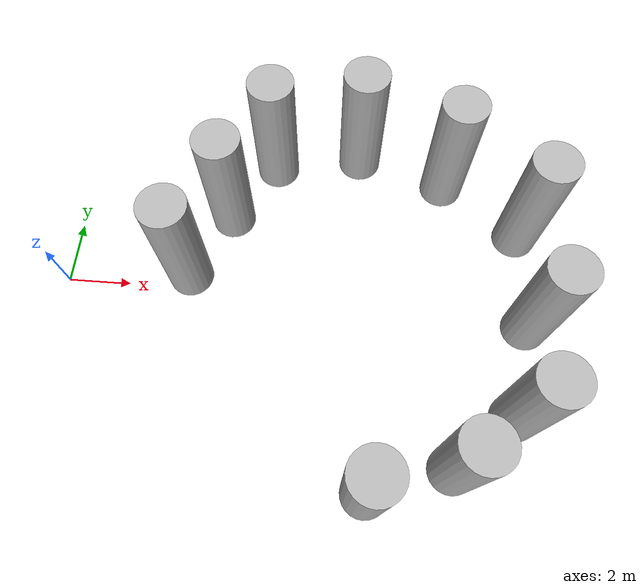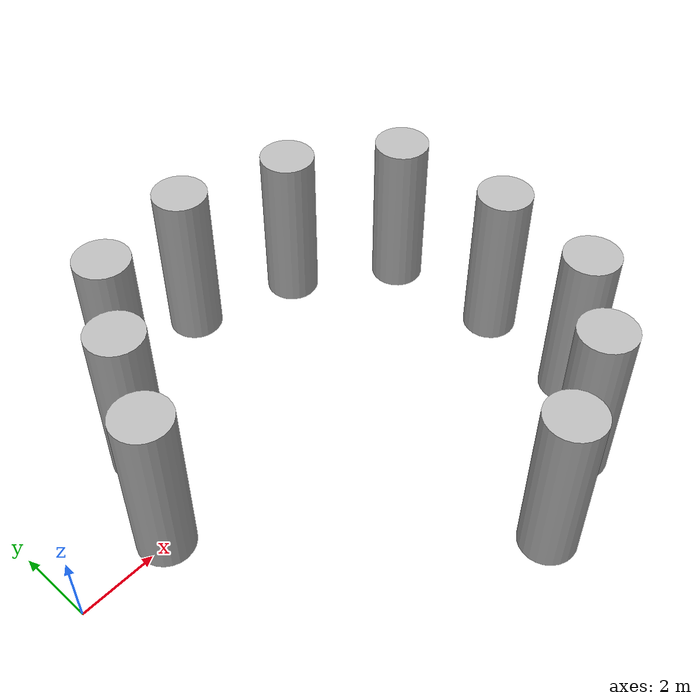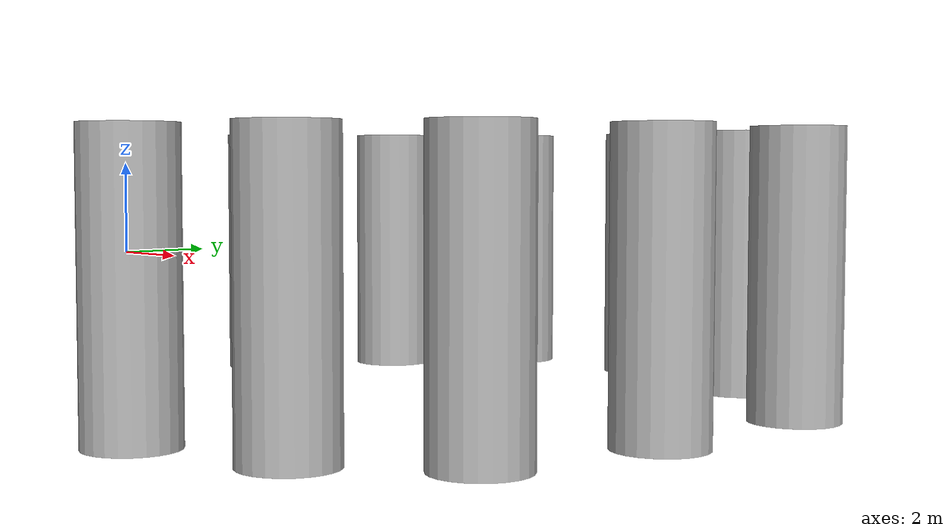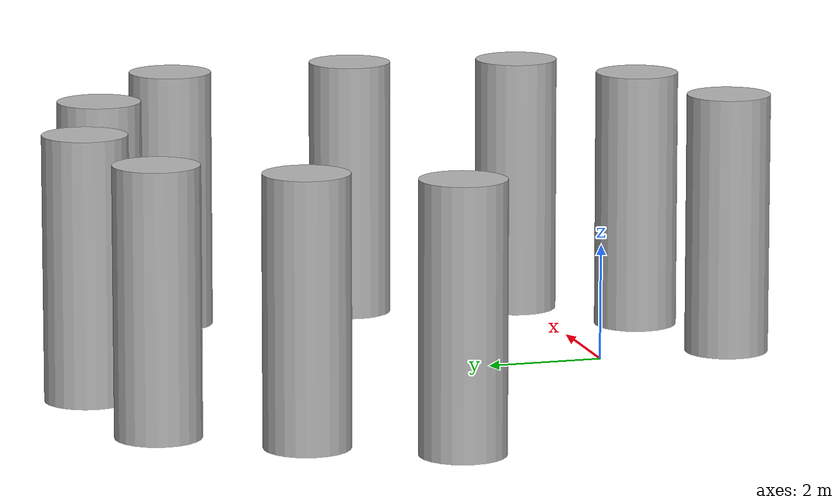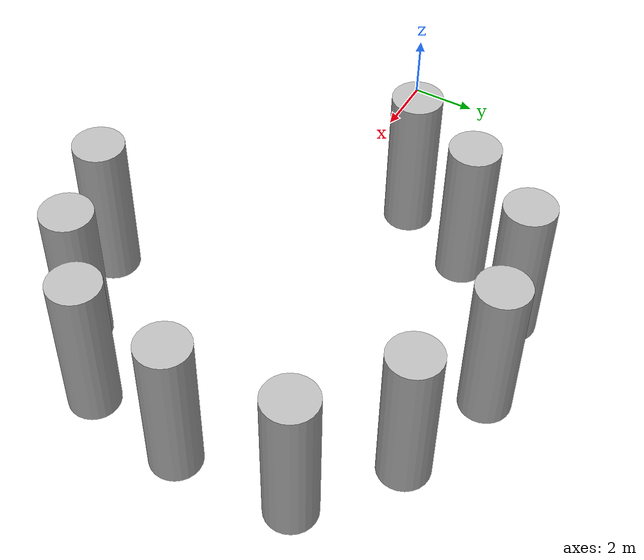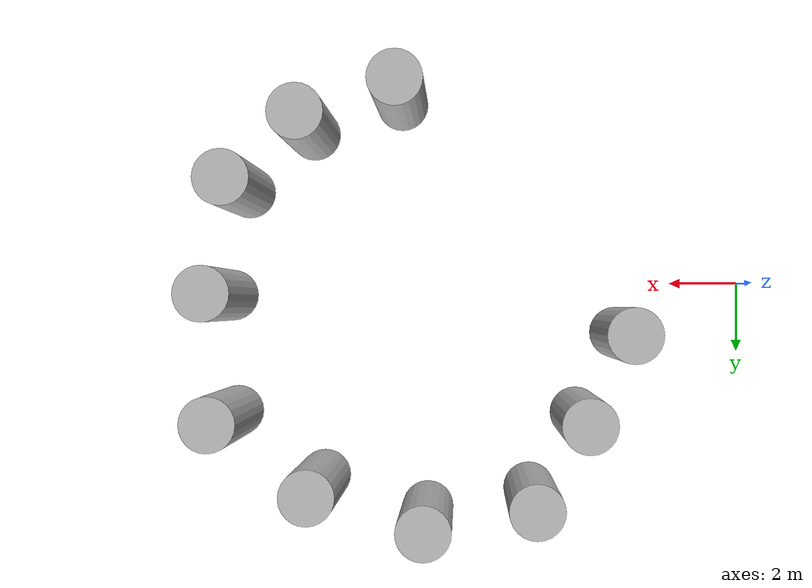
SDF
<?xml version='1.0'?>
<sdf version='1.6'>
  <model name='utrap'>
    <model name='beer_large'>
      <link name='link'>
        <pose frame=''>0 0 0.115 0 -0 0</pose>
        <inertial>
          <mass>1</mass>
          <inertia>
            <ixx>0</ixx>
            <ixy>0</ixy>
            <ixz>0</ixz>
            <iyy>0</iyy>
            <iyz>0</iyz>
            <izz>0</izz>
          </inertia>
        </inertial>
        <collision name='collision'>
          <geometry>
            <cylinder>
              <radius>0.8</radius>
              <length>5</length>
            </cylinder>
          </geometry>
        </collision>
        <visual name='visual'>
          <geometry>
            <cylinder>
              <radius>0.8</radius>
              <length>5</length>
            </cylinder>
          </geometry>
          <material>
            <script>
              <uri>model://beer_large/materials/scripts</uri>
              <uri>model://beer_large/materials/textures</uri>
              <name>Beer_Large/Diffuse</name>
            </script>
          </material>
        </visual>
      </link>
      <pose frame=''>10.0505 -5.74909 0 0 -0 0</pose>
    </model>
    <model name='beer_large_0'>
      <link name='link'>
        <pose frame=''>0 0 0.115 0 -0 0</pose>
        <inertial>
          <mass>1</mass>
          <inertia>
            <ixx>0</ixx>
            <ixy>0</ixy>
            <ixz>0</ixz>
            <iyy>0</iyy>
            <iyz>0</iyz>
            <izz>0</izz>
          </inertia>
        </inertial>
        <collision name='collision'>
          <geometry>
            <cylinder>
              <radius>0.8</radius>
              <length>5</length>
            </cylinder>
          </geometry>
        </collision>
        <visual name='visual'>
          <geometry>
            <cylinder>
              <radius>0.8</radius>
              <length>5</length>
            </cylinder>
          </geometry>
          <material>
            <script>
              <uri>model://beer_large/materials/scripts</uri>
              <uri>model://beer_large/materials/textures</uri>
              <name>Beer_Large/Diffuse</name>
            </script>
          </material>
        </visual>
      </link>
      <pose frame=''>12.839 -4.81282 0 0 -0 0</pose>
    </model>
    <model name='beer_large_1'>
      <link name='link'>
        <pose frame=''>0 0 0.115 0 -0 0</pose>
        <inertial>
          <mass>1</mass>
          <inertia>
            <ixx>0</ixx>
            <ixy>0</ixy>
            <ixz>0</ixz>
            <iyy>0</iyy>
            <iyz>0</iyz>
            <izz>0</izz>
          </inertia>
        </inertial>
        <collision name='collision'>
          <geometry>
            <cylinder>
              <radius>0.8</radius>
              <length>5</length>
            </cylinder>
          </geometry>
        </collision>
        <visual name='visual'>
          <geometry>
            <cylinder>
              <radius>0.8</radius>
              <length>5</length>
            </cylinder>
          </geometry>
          <material>
            <script>
              <uri>model://beer_large/materials/scripts</uri>
              <uri>model://beer_large/materials/textures</uri>
              <name>Beer_Large/Diffuse</name>
            </script>
          </material>
        </visual>
      </link>
      <pose frame=''>14.9132 -2.98127 0 0 -0 0</pose>
    </model>
    <model name='beer_large_2'>
      <link name='link'>
        <pose frame=''>0 0 0.115 0 -0 0</pose>
        <inertial>
          <mass>1</mass>
          <inertia>
            <ixx>0</ixx>
            <ixy>0</ixy>
            <ixz>0</ixz>
            <iyy>0</iyy>
            <iyz>0</iyz>
            <izz>0</izz>
          </inertia>
        </inertial>
        <collision name='collision'>
          <geometry>
            <cylinder>
              <radius>0.8</radius>
              <length>5</length>
            </cylinder>
          </geometry>
        </collision>
        <visual name='visual'>
          <geometry>
            <cylinder>
              <radius>0.8</radius>
              <length>5</length>
            </cylinder>
          </geometry>
          <material>
            <script>
              <uri>model://beer_large/materials/scripts</uri>
              <uri>model://beer_large/materials/textures</uri>
              <name>Beer_Large/Diffuse</name>
            </script>
          </material>
        </visual>
      </link>
      <pose frame=''>15.4706 0.267634 0 0 -0 0</pose>
    </model>
    <model name='beer_large_3'>
      <link name='link'>
        <pose frame=''>0 0 0.115 0 -0 0</pose>
        <inertial>
          <mass>1</mass>
          <inertia>
            <ixx>0</ixx>
            <ixy>0</ixy>
            <ixz>0</ixz>
            <iyy>0</iyy>
            <iyz>0</iyz>
            <izz>0</izz>
          </inertia>
        </inertial>
        <collision name='collision'>
          <geometry>
            <cylinder>
              <radius>0.8</radius>
              <length>5</length>
            </cylinder>
          </geometry>
        </collision>
        <visual name='visual'>
          <geometry>
            <cylinder>
              <radius>0.8</radius>
              <length>5</length>
            </cylinder>
          </geometry>
          <material>
            <script>
              <uri>model://beer_large/materials/scripts</uri>
              <uri>model://beer_large/materials/textures</uri>
              <name>Beer_Large/Diffuse</name>
            </script>
          </material>
        </visual>
      </link>
      <pose frame=''>15.3144 3.93366 0 0 -0 0</pose>
    </model>
    <model name='beer_large_4'>
      <link name='link'>
        <pose frame=''>0 0 0.115 0 -0 0</pose>
        <inertial>
          <mass>1</mass>
          <inertia>
            <ixx>0</ixx>
            <ixy>0</ixy>
            <ixz>0</ixz>
            <iyy>0</iyy>
            <iyz>0</iyz>
            <izz>0</izz>
          </inertia>
        </inertial>
        <collision name='collision'>
          <geometry>
            <cylinder>
              <radius>0.8</radius>
              <length>5</length>
            </cylinder>
          </geometry>
        </collision>
        <visual name='visual'>
          <geometry>
            <cylinder>
              <radius>0.8</radius>
              <length>5</length>
            </cylinder>
          </geometry>
          <material>
            <script>
              <uri>model://beer_large/materials/scripts</uri>
              <uri>model://beer_large/materials/textures</uri>
              <name>Beer_Large/Diffuse</name>
            </script>
          </material>
        </visual>
      </link>
      <pose frame=''>12.553 5.97825 0 0 -0 0</pose>
    </model>
    <model name='beer_large_5'>
      <link name='link'>
        <pose frame=''>0 0 0.115 0 -0 0</pose>
        <inertial>
          <mass>1</mass>
          <inertia>
            <ixx>0</ixx>
            <ixy>0</ixy>
            <ixz>0</ixz>
            <iyy>0</iyy>
            <iyz>0</iyz>
            <izz>0</izz>
          </inertia>
        </inertial>
        <collision name='collision'>
          <geometry>
            <cylinder>
              <radius>0.8</radius>
              <length>5</length>
            </cylinder>
          </geometry>
        </collision>
        <visual name='visual'>
          <geometry>
            <cylinder>
              <radius>0.8</radius>
              <length>5</length>
            </cylinder>
          </geometry>
          <material>
            <script>
              <uri>model://beer_large/materials/scripts</uri>
              <uri>model://beer_large/materials/textures</uri>
              <name>Beer_Large/Diffuse</name>
            </script>
          </material>
        </visual>
      </link>
      <pose frame=''>9.29465 6.98758 0 0 -0 0</pose>
    </model>
    <model name='beer_large_6'>
      <link name='link'>
        <pose frame=''>0 0 0.115 0 -0 0</pose>
        <inertial>
          <mass>1</mass>
          <inertia>
            <ixx>0</ixx>
            <ixy>0</ixy>
            <ixz>0</ixz>
            <iyy>0</iyy>
            <iyz>0</iyz>
            <izz>0</izz>
          </inertia>
        </inertial>
        <collision name='collision'>
          <geometry>
            <cylinder>
              <radius>0.8</radius>
              <length>5</length>
            </cylinder>
          </geometry>
        </collision>
        <visual name='visual'>
          <geometry>
            <cylinder>
              <radius>0.8</radius>
              <length>5</length>
            </cylinder>
          </geometry>
          <material>
            <script>
              <uri>model://beer_large/materials/scripts</uri>
              <uri>model://beer_large/materials/textures</uri>
              <name>Beer_Large/Diffuse</name>
            </script>
          </material>
        </visual>
      </link>
      <pose frame=''>6.0922 6.40217 0 0 -0 0</pose>
    </model>
    <model name='beer_large_7'>
      <link name='link'>
        <pose frame=''>0 0 0.115 0 -0 0</pose>
        <inertial>
          <mass>1</mass>
          <inertia>
            <ixx>0</ixx>
            <ixy>0</ixy>
            <ixz>0</ixz>
            <iyy>0</iyy>
            <iyz>0</iyz>
            <izz>0</izz>
          </inertia>
        </inertial>
        <collision name='collision'>
          <geometry>
            <cylinder>
              <radius>0.8</radius>
              <length>5</length>
            </cylinder>
          </geometry>
        </collision>
        <visual name='visual'>
          <geometry>
            <cylinder>
              <radius>0.8</radius>
              <length>5</length>
            </cylinder>
          </geometry>
          <material>
            <script>
              <uri>model://beer_large/materials/scripts</uri>
              <uri>model://beer_large/materials/textures</uri>
              <name>Beer_Large/Diffuse</name>
            </script>
          </material>
        </visual>
      </link>
      <pose frame=''>4.60893 4.01848 0 0 -0 0</pose>
    </model>
    <model name='beer_large_8'>
      <link name='link'>
        <pose frame=''>0 0 0.115 0 -0 0</pose>
        <inertial>
          <mass>1</mass>
          <inertia>
            <ixx>0</ixx>
            <ixy>0</ixy>
            <ixz>0</ixz>
            <iyy>0</iyy>
            <iyz>0</iyz>
            <izz>0</izz>
          </inertia>
        </inertial>
        <collision name='collision'>
          <geometry>
            <cylinder>
              <radius>0.8</radius>
              <length>5</length>
            </cylinder>
          </geometry>
        </collision>
        <visual name='visual'>
          <geometry>
            <cylinder>
              <radius>0.8</radius>
              <length>5</length>
            </cylinder>
          </geometry>
          <material>
            <script>
              <uri>model://beer_large/materials/scripts</uri>
              <uri>model://beer_large/materials/textures</uri>
              <name>Beer_Large/Diffuse</name>
            </script>
          </material>
        </visual>
      </link>
      <pose frame=''>3.34146 1.48963 0 0 -0 0</pose>
    </model>
    <static>0</static>
    <allow_auto_disable>1</allow_auto_disable>
  </model>
</sdf>
